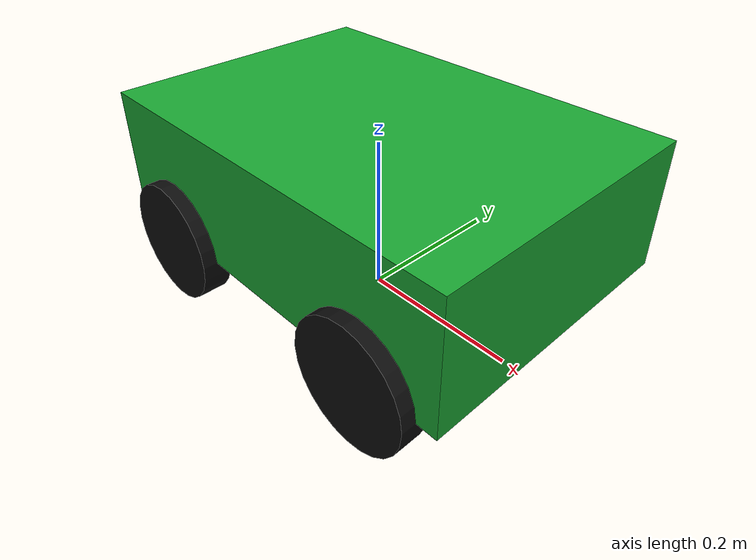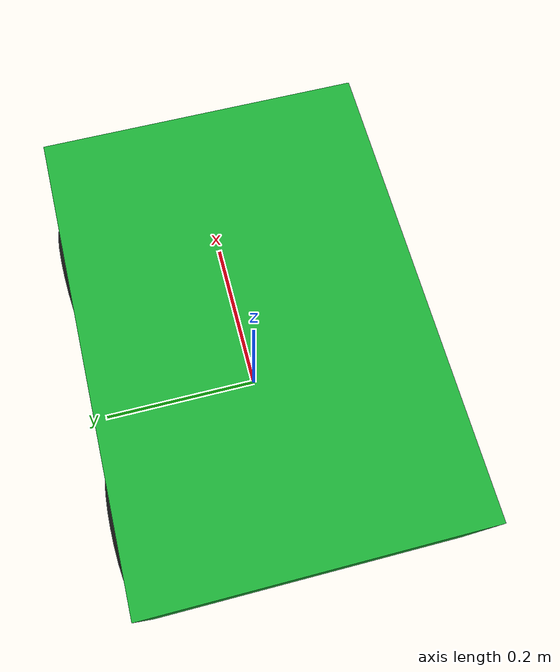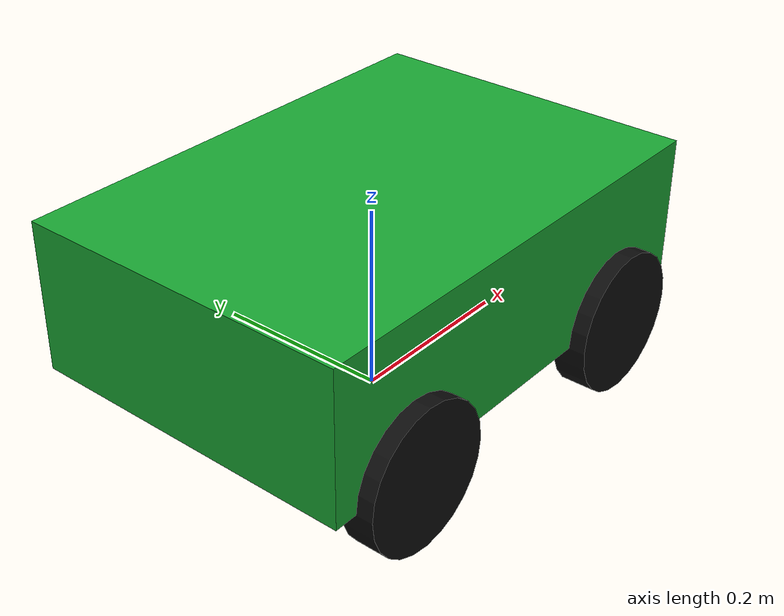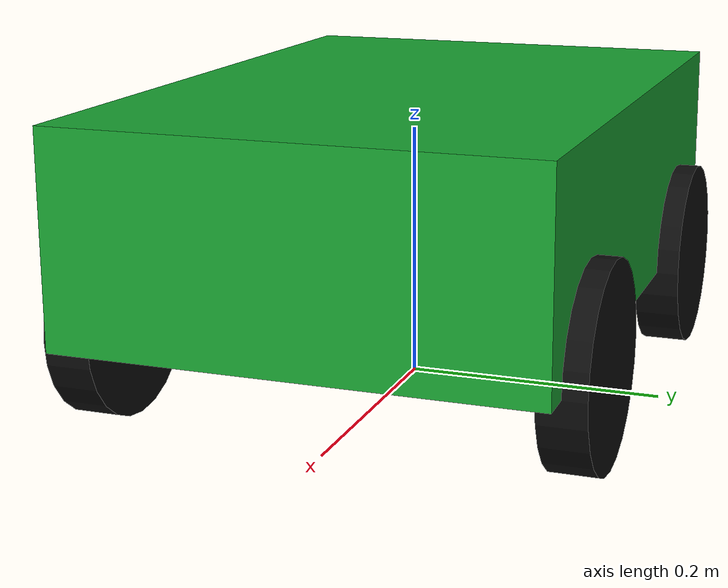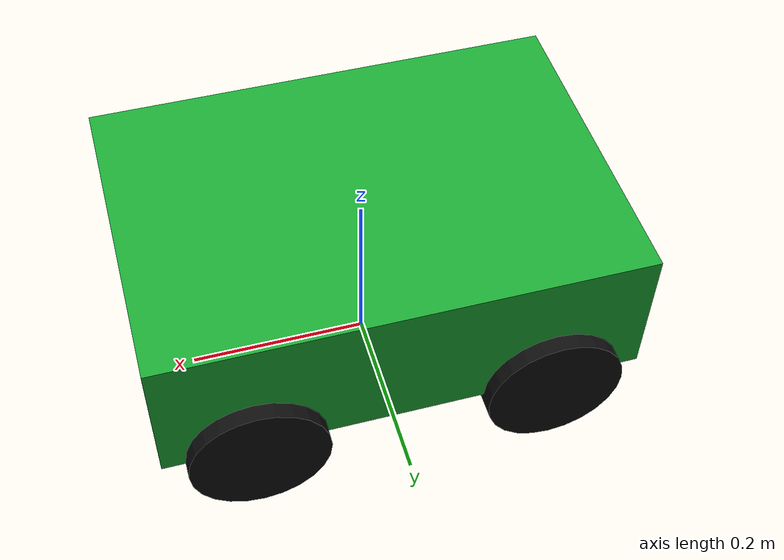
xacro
<?xml version="1.0"?>
<robot xmlns:xacro="http://www.ros.org/wiki/xacro" name="ai_robot">
  <xacro:property name="body_length" value="0.52"/>
  <xacro:property name="body_width" value="0.36"/>
  <xacro:property name="body_height" value="0.16"/>
  <xacro:property name="wheel_radius" value="0.075"/>
  <xacro:property name="wheel_width" value="0.035"/>
  <xacro:property name="wheel_x" value="0.16"/>
  <xacro:property name="wheel_y" value="0.18"/>
  <xacro:property name="laser_samples" value="360"/>
  <xacro:property name="laser_min_angle" value="-3.14159"/>
  <xacro:property name="laser_max_angle" value="3.14159"/>
  <xacro:property name="laser_min_range" value="0.12"/>
  <xacro:property name="laser_max_range" value="8.0"/>
  <xacro:property name="camera_width" value="640"/>
  <xacro:property name="camera_height" value="480"/>
  <xacro:property name="camera_hfov" value="1.047"/>

  <link name="base_footprint"/>
  <joint name="base_footprint_joint" type="fixed">
    <parent link="base_footprint"/>
    <child link="base_link"/>
    <origin xyz="0 0 0" rpy="0 0 0"/>
  </joint>

  <link name="base_link">
    <inertial>
      <origin xyz="0 0 0" rpy="0 0 0"/>
      <mass value="12.0"/>
      <inertia ixx="0.20" ixy="0" ixz="0" iyy="0.32" iyz="0" izz="0.42"/>
    </inertial>
    <visual>
      <origin xyz="0 0 ${wheel_radius + body_height / 2}" rpy="0 0 0"/>
      <geometry><box size="${body_length} ${body_width} ${body_height}"/></geometry>
      <material name="green"><color rgba="0.1 0.65 0.2 1"/></material>
    </visual>
    <collision>
      <origin xyz="0 0 ${wheel_radius + body_height / 2}" rpy="0 0 0"/>
      <geometry><box size="${body_length} ${body_width} ${body_height}"/></geometry>
    </collision>
  </link>

  <xacro:macro name="wheel" params="name x y">
    <link name="${name}">
      <inertial>
        <origin xyz="0 0 0" rpy="0 0 0"/>
        <mass value="0.8"/>
        <inertia ixx="0.002" ixy="0" ixz="0" iyy="0.002" iyz="0" izz="0.003"/>
      </inertial>
      <visual>
        <origin xyz="0 0 0" rpy="${pi / 2} 0 0"/>
        <geometry><cylinder radius="${wheel_radius}" length="${wheel_width}"/></geometry>
        <material name="black"><color rgba="0.05 0.05 0.05 1"/></material>
      </visual>
      <collision>
        <origin xyz="0 0 0" rpy="${pi / 2} 0 0"/>
        <geometry><cylinder radius="${wheel_radius}" length="${wheel_width}"/></geometry>
      </collision>
    </link>
    <joint name="${name}_joint" type="continuous">
      <parent link="base_link"/>
      <child link="${name}"/>
      <origin xyz="${x} ${y} ${wheel_radius}" rpy="0 0 0"/>
      <axis xyz="0 1 0"/>
    </joint>
  </xacro:macro>

  <xacro:wheel name="left_front_wheel" x="${wheel_x}" y="${wheel_y}"/>
  <xacro:wheel name="left_rear_wheel" x="-${wheel_x}" y="${wheel_y}"/>
  <xacro:wheel name="right_front_wheel" x="${wheel_x}" y="-${wheel_y}"/>
  <xacro:wheel name="right_rear_wheel" x="-${wheel_x}" y="-${wheel_y}"/>

  <link name="laser_link"/>
  <joint name="laser_joint" type="fixed">
    <parent link="base_link"/>
    <child link="laser_link"/>
    <origin xyz="0.16 0 ${wheel_radius + body_height + 0.06}" rpy="0 0 0"/>
  </joint>

  <link name="camera_link"/>
  <joint name="camera_joint" type="fixed">
    <parent link="base_link"/>
    <child link="camera_link"/>
    <origin xyz="0.20 0 ${wheel_radius + body_height + 0.10}" rpy="0 0 0"/>
  </joint>

  <link name="imu_link"/>
  <joint name="imu_joint" type="fixed">
    <parent link="base_link"/>
    <child link="imu_link"/>
    <origin xyz="0 0 ${wheel_radius + body_height}" rpy="0 0 0"/>
  </joint>

  <gazebo reference="base_link"><material>Gazebo/Green</material></gazebo>
  <gazebo reference="left_front_wheel"><material>Gazebo/Black</material></gazebo>
  <gazebo reference="left_rear_wheel"><material>Gazebo/Black</material></gazebo>
  <gazebo reference="right_front_wheel"><material>Gazebo/Black</material></gazebo>
  <gazebo reference="right_rear_wheel"><material>Gazebo/Black</material></gazebo>

  <gazebo>
    <plugin name="ai_robot_diff_drive" filename="libgazebo_ros_diff_drive.so">
      <update_rate>50</update_rate>
      <num_wheel_pairs>2</num_wheel_pairs>
      <left_joint>left_front_wheel_joint</left_joint>
      <right_joint>right_front_wheel_joint</right_joint>
      <left_joint>left_rear_wheel_joint</left_joint>
      <right_joint>right_rear_wheel_joint</right_joint>
      <wheel_separation>0.36</wheel_separation>
      <wheel_separation>0.36</wheel_separation>
      <wheel_diameter>0.15</wheel_diameter>
      <wheel_diameter>0.15</wheel_diameter>
      <max_wheel_torque>5.0</max_wheel_torque>
      <max_wheel_acceleration>4.0</max_wheel_acceleration>
      <publish_odom>true</publish_odom>
      <publish_odom_tf>true</publish_odom_tf>
      <publish_wheel_tf>true</publish_wheel_tf>
      <odometry_topic>odom</odometry_topic>
      <odometry_frame>odom</odometry_frame>
      <robot_base_frame>base_footprint</robot_base_frame>
    </plugin>
  </gazebo>

  <gazebo>
    <plugin name="ai_robot_joint_states" filename="libgazebo_ros_joint_state_publisher.so">
      <update_rate>50</update_rate>
      <joint_name>left_front_wheel_joint</joint_name>
      <joint_name>left_rear_wheel_joint</joint_name>
      <joint_name>right_front_wheel_joint</joint_name>
      <joint_name>right_rear_wheel_joint</joint_name>
    </plugin>
  </gazebo>

  <gazebo reference="laser_link">
    <sensor name="ai_robot_laser" type="ray">
      <always_on>true</always_on>
      <visualize>true</visualize>
      <update_rate>10</update_rate>
      <ray>
        <scan>
          <horizontal>
            <samples>${laser_samples}</samples>
            <resolution>1</resolution>
            <min_angle>${laser_min_angle}</min_angle>
            <max_angle>${laser_max_angle}</max_angle>
          </horizontal>
        </scan>
        <range>
          <min>${laser_min_range}</min>
          <max>${laser_max_range}</max>
          <resolution>0.01</resolution>
        </range>
        <noise>
          <type>gaussian</type>
          <mean>0.0</mean>
          <stddev>0.01</stddev>
        </noise>
      </ray>
      <plugin name="ai_robot_laser_scan" filename="libgazebo_ros_ray_sensor.so">
        <ros>
          <remapping>~/out:=/scan</remapping>
        </ros>
        <output_type>sensor_msgs/LaserScan</output_type>
        <frame_name>laser_link</frame_name>
      </plugin>
    </sensor>
  </gazebo>

  <gazebo reference="camera_link">
    <sensor name="ai_robot_camera" type="camera">
      <always_on>true</always_on>
      <visualize>true</visualize>
      <update_rate>10</update_rate>
      <camera>
        <horizontal_fov>${camera_hfov}</horizontal_fov>
        <image>
          <width>${camera_width}</width>
          <height>${camera_height}</height>
          <format>R8G8B8</format>
        </image>
        <clip>
          <near>0.05</near>
          <far>8.0</far>
        </clip>
        <noise>
          <type>gaussian</type>
          <mean>0.0</mean>
          <stddev>0.005</stddev>
        </noise>
      </camera>
      <plugin name="ai_robot_camera_driver" filename="libgazebo_ros_camera.so">
        <ros>
          <remapping>image_raw:=/camera/image_raw</remapping>
          <remapping>camera_info:=/camera/camera_info</remapping>
        </ros>
        <camera_name>camera</camera_name>
        <frame_name>camera_link</frame_name>
      </plugin>
    </sensor>
  </gazebo>

  <gazebo reference="imu_link">
    <sensor name="ai_robot_imu" type="imu">
      <always_on>true</always_on>
      <update_rate>50</update_rate>
      <imu>
        <angular_velocity>
          <x>
            <noise type="gaussian">
              <mean>0.0</mean>
              <stddev>0.0002</stddev>
            </noise>
          </x>
          <y>
            <noise type="gaussian">
              <mean>0.0</mean>
              <stddev>0.0002</stddev>
            </noise>
          </y>
          <z>
            <noise type="gaussian">
              <mean>0.0</mean>
              <stddev>0.0002</stddev>
            </noise>
          </z>
        </angular_velocity>
        <linear_acceleration>
          <x>
            <noise type="gaussian">
              <mean>0.0</mean>
              <stddev>0.01</stddev>
            </noise>
          </x>
          <y>
            <noise type="gaussian">
              <mean>0.0</mean>
              <stddev>0.01</stddev>
            </noise>
          </y>
          <z>
            <noise type="gaussian">
              <mean>0.0</mean>
              <stddev>0.01</stddev>
            </noise>
          </z>
        </linear_acceleration>
      </imu>
      <plugin name="ai_robot_imu_driver" filename="libgazebo_ros_imu_sensor.so">
        <ros>
          <remapping>~/out:=/imu/data</remapping>
        </ros>
        <initial_orientation_as_reference>false</initial_orientation_as_reference>
        <frame_name>imu_link</frame_name>
      </plugin>
    </sensor>
  </gazebo>
</robot>
